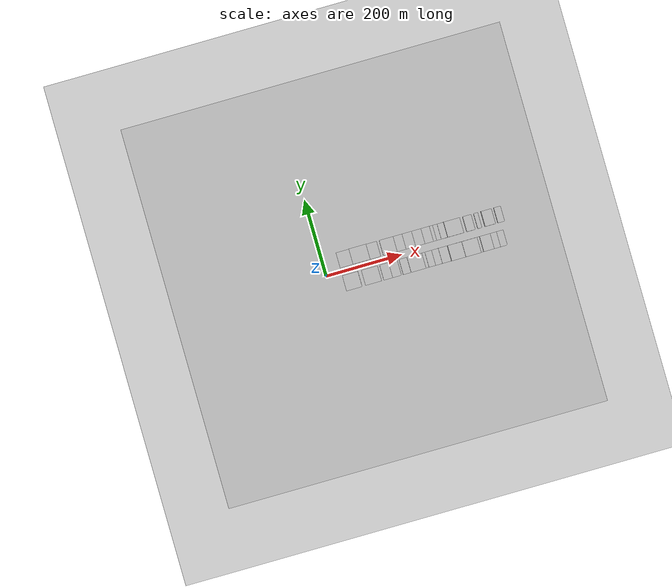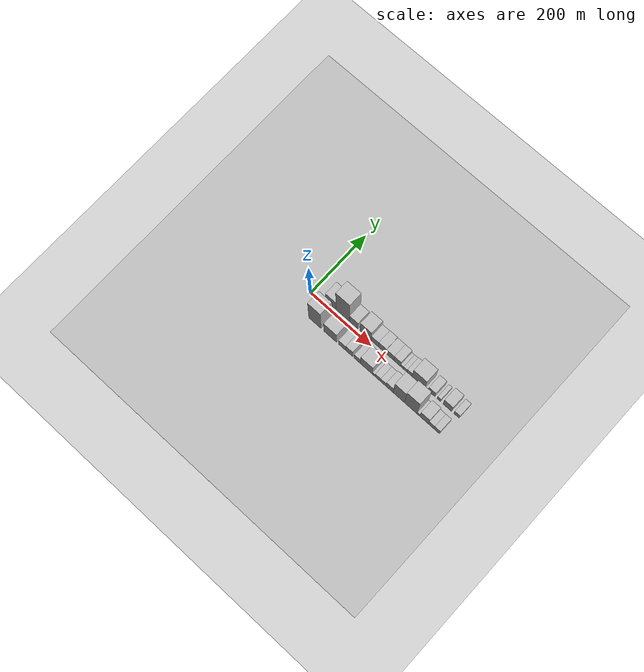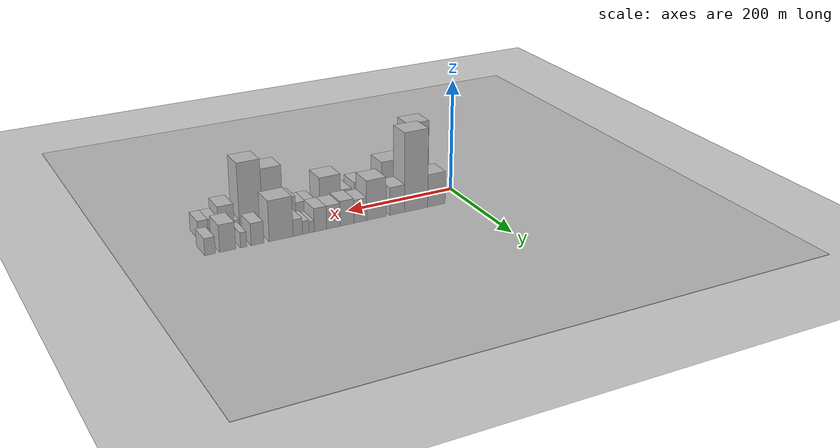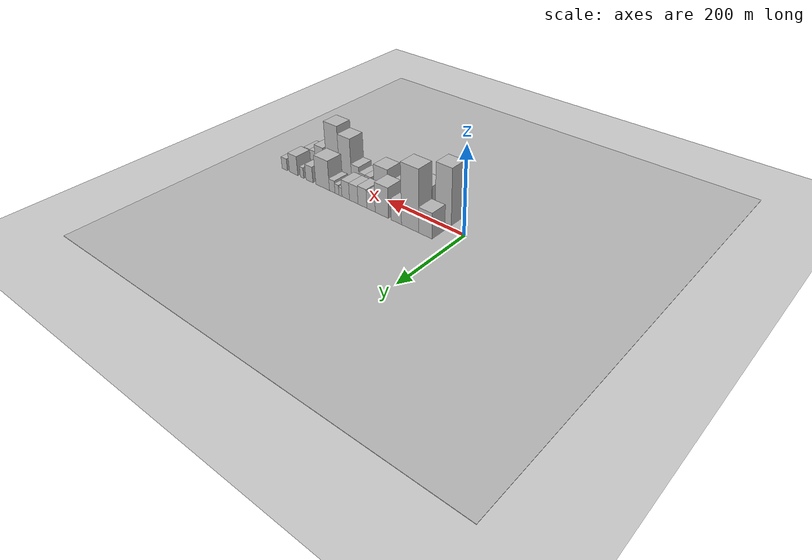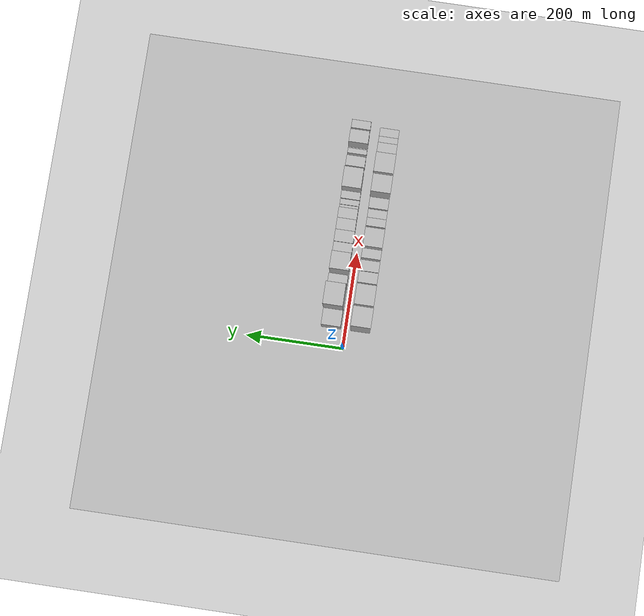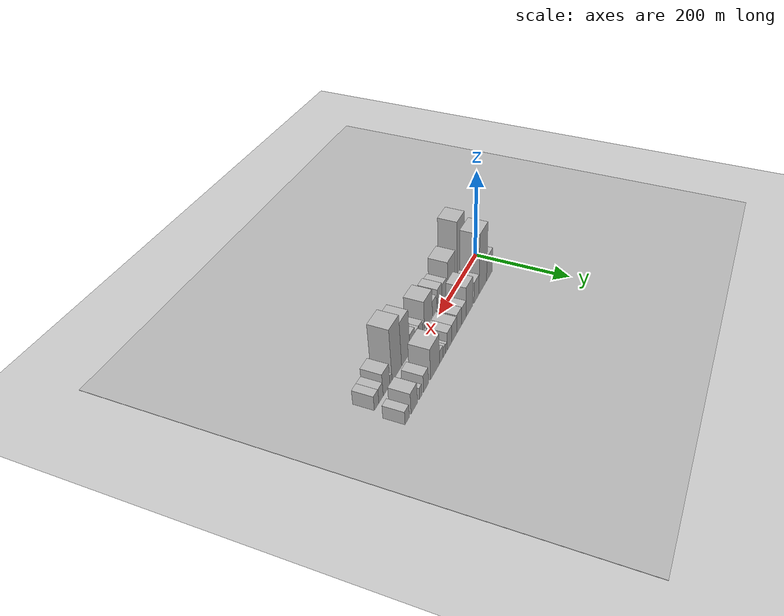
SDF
<?xml version="1.0" encoding="utf-8"?>

<sdf version="1.6">

   <world name="default">

      <gui fullscreen="0">

         <camera name="user_camera">

            <pose>-15 0 4.57585 0 0 0</pose>

            <view_controller>orbit</view_controller>

         </camera>

      </gui>

      <scene>

         <sky>

           <clouds>

             <speed>12</speed>

           </clouds>

         </sky>

         <ambient>0.4 0.4 0.4 1</ambient>

         <background>0.7 0.7 0.7 1</background>

         <shadows>1</shadows>

      </scene>

      <gravity>0 0 -9.8066</gravity>

      <magnetic_field>6e-06 2.3e-05 -4.2e-05</magnetic_field>

      <physics default="0" name="default_physics" type="ode">

         <ode>

            <solver>

               <type>quick</type>

               <iters>10</iters>

               <sor>1.0</sor>

               <use_dynamic_moi_rescaling>0</use_dynamic_moi_rescaling>

            </solver>

            <constraints>

               <cfm>0</cfm>

               <erp>0.2</erp>

               <contact_max_correcting_vel>100</contact_max_correcting_vel>

               <contact_surface_layer>0.001</contact_surface_layer>

            </constraints>

         </ode>

         <max_step_size>0.004</max_step_size>

         <real_time_factor>1</real_time_factor>

         <real_time_update_rate>250</real_time_update_rate>

      </physics>

      <light name="sun" type="directional">

         <cast_shadows>1</cast_shadows>

         <pose>0 0 10 0 0 0</pose>

         <diffuse>0.8 0.8 0.8 1</diffuse>

         <specular>0.2 0.2 0.2 1</specular>

         <attenuation>

            <range>1000</range>

            <constant>0.9</constant>

            <linear>0.01</linear>

            <quadratic>0.001</quadratic>

         </attenuation>

         <direction>-0.5 0.1 -0.9</direction>

      </light>

      <include>

         <name>ground_plane_1</name>

         <uri>model://HANNAS_ground_plane</uri>

         <pose>0 0 0  0 0 0</pose>

      </include>

      <include>

         <name>ground_plane_2</name>

         <uri>model://HANNAS_ground_plane</uri>

         <pose>100 0 0  0 0 0</pose>

      </include>

      <model name="building_1">

         <static>1</static>

         <pose frame="">56.9899 30.0000 0 0.000000 0.000000 1.570796</pose>

         <link name="link">

            <pose frame="">0 0 30.00 0 0 0</pose>

            <collision name="collision">

               <geometry>

                  <box>

                     <size>40.0000 33.9798 60.0000</size>

                  </box>

               </geometry>

               <max_contacts>10</max_contacts>

               <surface>

                  <contact>

                     <ode/>

                  </contact>

                  <bounce/>

                  <friction>

                     <torsional>

                        <ode/>

                     </torsional>

                     <ode/>

                  </friction>

               </surface>

            </collision>

            <visual name="visual">

               <cast_shadows>0</cast_shadows>

               <geometry>

                  <box>

                     <size>40.0000 33.9798 60.0000</size>

                  </box>

               </geometry>

               <material>

                  <script>

                     <uri>model://HANNAS_wall/materials/scripts</uri>

                     <uri>model://HANNAS_wall/materials/textures</uri>

                     <name>vrc/HANNAS_wall</name>

                  </script>

               </material>

            </visual>

            <self_collide>0</self_collide>

            <enable_wind>0</enable_wind>

            <kinematic>0</kinematic>

         </link>

      </model>

      <model name="building_2">

         <static>1</static>

         <pose frame="">96.3748 30.0000 0 0.000000 0.000000 1.570796</pose>

         <link name="link">

            <pose frame="">0 0 72.00 0 0 0</pose>

            <collision name="collision">

               <geometry>

                  <box>

                     <size>40.0000 44.7900 144.0000</size>

                  </box>

               </geometry>

               <max_contacts>10</max_contacts>

               <surface>

                  <contact>

                     <ode/>

                  </contact>

                  <bounce/>

                  <friction>

                     <torsional>

                        <ode/>

                     </torsional>

                     <ode/>

                  </friction>

               </surface>

            </collision>

            <visual name="visual">

               <cast_shadows>0</cast_shadows>

               <geometry>

                  <box>

                     <size>40.0000 44.7900 144.0000</size>

                  </box>

               </geometry>

               <material>

                  <script>

                     <uri>model://HANNAS_wall/materials/scripts</uri>

                     <uri>model://HANNAS_wall/materials/textures</uri>

                     <name>vrc/HANNAS_wall</name>

                  </script>

               </material>

            </visual>

            <self_collide>0</self_collide>

            <enable_wind>0</enable_wind>

            <kinematic>0</kinematic>

         </link>

      </model>

      <model name="building_3">

         <static>1</static>

         <pose frame="">132.7317 30.0000 0 0.000000 0.000000 1.570796</pose>

         <link name="link">

            <pose frame="">0 0 25.50 0 0 0</pose>

            <collision name="collision">

               <geometry>

                  <box>

                     <size>40.0000 27.9239 51.0000</size>

                  </box>

               </geometry>

               <max_contacts>10</max_contacts>

               <surface>

                  <contact>

                     <ode/>

                  </contact>

                  <bounce/>

                  <friction>

                     <torsional>

                        <ode/>

                     </torsional>

                     <ode/>

                  </friction>

               </surface>

            </collision>

            <visual name="visual">

               <cast_shadows>0</cast_shadows>

               <geometry>

                  <box>

                     <size>40.0000 27.9239 51.0000</size>

                  </box>

               </geometry>

               <material>

                  <script>

                     <uri>model://HANNAS_wall/materials/scripts</uri>

                     <uri>model://HANNAS_wall/materials/textures</uri>

                     <name>vrc/HANNAS_wall</name>

                  </script>

               </material>

            </visual>

            <self_collide>0</self_collide>

            <enable_wind>0</enable_wind>

            <kinematic>0</kinematic>

         </link>

      </model>

      <model name="building_4">

         <static>1</static>

         <pose frame="">171.7846 30.0000 0 0.000000 0.000000 1.570796</pose>

         <link name="link">

            <pose frame="">0 0 36.00 0 0 0</pose>

            <collision name="collision">

               <geometry>

                  <box>

                     <size>40.0000 36.1819 72.0000</size>

                  </box>

               </geometry>

               <max_contacts>10</max_contacts>

               <surface>

                  <contact>

                     <ode/>

                  </contact>

                  <bounce/>

                  <friction>

                     <torsional>

                        <ode/>

                     </torsional>

                     <ode/>

                  </friction>

               </surface>

            </collision>

            <visual name="visual">

               <cast_shadows>0</cast_shadows>

               <geometry>

                  <box>

                     <size>40.0000 36.1819 72.0000</size>

                  </box>

               </geometry>

               <material>

                  <script>

                     <uri>model://HANNAS_wall/materials/scripts</uri>

                     <uri>model://HANNAS_wall/materials/textures</uri>

                     <name>vrc/HANNAS_wall</name>

                  </script>

               </material>

            </visual>

            <self_collide>0</self_collide>

            <enable_wind>0</enable_wind>

            <kinematic>0</kinematic>

         </link>

      </model>

      <model name="building_5">

         <static>1</static>

         <pose frame="">201.5878 30.0000 0 0.000000 0.000000 1.570796</pose>

         <link name="link">

            <pose frame="">0 0 21.00 0 0 0</pose>

            <collision name="collision">

               <geometry>

                  <box>

                     <size>40.0000 23.4246 42.0000</size>

                  </box>

               </geometry>

               <max_contacts>10</max_contacts>

               <surface>

                  <contact>

                     <ode/>

                  </contact>

                  <bounce/>

                  <friction>

                     <torsional>

                        <ode/>

                     </torsional>

                     <ode/>

                  </friction>

               </surface>

            </collision>

            <visual name="visual">

               <cast_shadows>0</cast_shadows>

               <geometry>

                  <box>

                     <size>40.0000 23.4246 42.0000</size>

                  </box>

               </geometry>

               <material>

                  <script>

                     <uri>model://HANNAS_wall/materials/scripts</uri>

                     <uri>model://HANNAS_wall/materials/textures</uri>

                     <name>vrc/HANNAS_wall</name>

                  </script>

               </material>

            </visual>

            <self_collide>0</self_collide>

            <enable_wind>0</enable_wind>

            <kinematic>0</kinematic>

         </link>

      </model>

      <model name="building_6">

         <static>1</static>

         <pose frame="">225.8583 30.0000 0 0.000000 0.000000 1.570796</pose>

         <link name="link">

            <pose frame="">0 0 22.50 0 0 0</pose>

            <collision name="collision">

               <geometry>

                  <box>

                     <size>40.0000 25.1162 45.0000</size>

                  </box>

               </geometry>

               <max_contacts>10</max_contacts>

               <surface>

                  <contact>

                     <ode/>

                  </contact>

                  <bounce/>

                  <friction>

                     <torsional>

                        <ode/>

                     </torsional>

                     <ode/>

                  </friction>

               </surface>

            </collision>

            <visual name="visual">

               <cast_shadows>0</cast_shadows>

               <geometry>

                  <box>

                     <size>40.0000 25.1162 45.0000</size>

                  </box>

               </geometry>

               <material>

                  <script>

                     <uri>model://HANNAS_wall/materials/scripts</uri>

                     <uri>model://HANNAS_wall/materials/textures</uri>

                     <name>vrc/HANNAS_wall</name>

                  </script>

               </material>

            </visual>

            <self_collide>0</self_collide>

            <enable_wind>0</enable_wind>

            <kinematic>0</kinematic>

         </link>

      </model>

      <model name="building_7">

         <static>1</static>

         <pose frame="">250.7361 30.0000 0 0.000000 0.000000 1.570796</pose>

         <link name="link">

            <pose frame="">0 0 21.00 0 0 0</pose>

            <collision name="collision">

               <geometry>

                  <box>

                     <size>40.0000 24.6395 42.0000</size>

                  </box>

               </geometry>

               <max_contacts>10</max_contacts>

               <surface>

                  <contact>

                     <ode/>

                  </contact>

                  <bounce/>

                  <friction>

                     <torsional>

                        <ode/>

                     </torsional>

                     <ode/>

                  </friction>

               </surface>

            </collision>

            <visual name="visual">

               <cast_shadows>0</cast_shadows>

               <geometry>

                  <box>

                     <size>40.0000 24.6395 42.0000</size>

                  </box>

               </geometry>

               <material>

                  <script>

                     <uri>model://HANNAS_wall/materials/scripts</uri>

                     <uri>model://HANNAS_wall/materials/textures</uri>

                     <name>vrc/HANNAS_wall</name>

                  </script>

               </material>

            </visual>

            <self_collide>0</self_collide>

            <enable_wind>0</enable_wind>

            <kinematic>0</kinematic>

         </link>

      </model>

      <model name="building_8">

         <static>1</static>

         <pose frame="">274.1324 30.0000 0 0.000000 0.000000 1.570796</pose>

         <link name="link">

            <pose frame="">0 0 21.00 0 0 0</pose>

            <collision name="collision">

               <geometry>

                  <box>

                     <size>40.0000 22.1531 42.0000</size>

                  </box>

               </geometry>

               <max_contacts>10</max_contacts>

               <surface>

                  <contact>

                     <ode/>

                  </contact>

                  <bounce/>

                  <friction>

                     <torsional>

                        <ode/>

                     </torsional>

                     <ode/>

                  </friction>

               </surface>

            </collision>

            <visual name="visual">

               <cast_shadows>0</cast_shadows>

               <geometry>

                  <box>

                     <size>40.0000 22.1531 42.0000</size>

                  </box>

               </geometry>

               <material>

                  <script>

                     <uri>model://HANNAS_wall/materials/scripts</uri>

                     <uri>model://HANNAS_wall/materials/textures</uri>

                     <name>vrc/HANNAS_wall</name>

                  </script>

               </material>

            </visual>

            <self_collide>0</self_collide>

            <enable_wind>0</enable_wind>

            <kinematic>0</kinematic>

         </link>

      </model>

      <model name="building_9">

         <static>1</static>

         <pose frame="">289.7106 30.0000 0 0.000000 0.000000 1.570796</pose>

         <link name="link">

            <pose frame="">0 0 10.50 0 0 0</pose>

            <collision name="collision">

               <geometry>

                  <box>

                     <size>40.0000 9.0032 21.0000</size>

                  </box>

               </geometry>

               <max_contacts>10</max_contacts>

               <surface>

                  <contact>

                     <ode/>

                  </contact>

                  <bounce/>

                  <friction>

                     <torsional>

                        <ode/>

                     </torsional>

                     <ode/>

                  </friction>

               </surface>

            </collision>

            <visual name="visual">

               <cast_shadows>0</cast_shadows>

               <geometry>

                  <box>

                     <size>40.0000 9.0032 21.0000</size>

                  </box>

               </geometry>

               <material>

                  <script>

                     <uri>model://HANNAS_wall/materials/scripts</uri>

                     <uri>model://HANNAS_wall/materials/textures</uri>

                     <name>vrc/HANNAS_wall</name>

                  </script>

               </material>

            </visual>

            <self_collide>0</self_collide>

            <enable_wind>0</enable_wind>

            <kinematic>0</kinematic>

         </link>

      </model>

      <model name="building_10">

         <static>1</static>

         <pose frame="">300.1160 30.0000 0 0.000000 0.000000 1.570796</pose>

         <link name="link">

            <pose frame="">0 0 12.00 0 0 0</pose>

            <collision name="collision">

               <geometry>

                  <box>

                     <size>40.0000 11.8075 24.0000</size>

                  </box>

               </geometry>

               <max_contacts>10</max_contacts>

               <surface>

                  <contact>

                     <ode/>

                  </contact>

                  <bounce/>

                  <friction>

                     <torsional>

                        <ode/>

                     </torsional>

                     <ode/>

                  </friction>

               </surface>

            </collision>

            <visual name="visual">

               <cast_shadows>0</cast_shadows>

               <geometry>

                  <box>

                     <size>40.0000 11.8075 24.0000</size>

                  </box>

               </geometry>

               <material>

                  <script>

                     <uri>model://HANNAS_wall/materials/scripts</uri>

                     <uri>model://HANNAS_wall/materials/textures</uri>

                     <name>vrc/HANNAS_wall</name>

                  </script>

               </material>

            </visual>

            <self_collide>0</self_collide>

            <enable_wind>0</enable_wind>

            <kinematic>0</kinematic>

         </link>

      </model>

      <model name="building_11">

         <static>1</static>

         <pose frame="">314.2393 30.0000 0 0.000000 0.000000 1.570796</pose>

         <link name="link">

            <pose frame="">0 0 15.00 0 0 0</pose>

            <collision name="collision">

               <geometry>

                  <box>

                     <size>40.0000 16.4392 30.0000</size>

                  </box>

               </geometry>

               <max_contacts>10</max_contacts>

               <surface>

                  <contact>

                     <ode/>

                  </contact>

                  <bounce/>

                  <friction>

                     <torsional>

                        <ode/>

                     </torsional>

                     <ode/>

                  </friction>

               </surface>

            </collision>

            <visual name="visual">

               <cast_shadows>0</cast_shadows>

               <geometry>

                  <box>

                     <size>40.0000 16.4392 30.0000</size>

                  </box>

               </geometry>

               <material>

                  <script>

                     <uri>model://HANNAS_wall/materials/scripts</uri>

                     <uri>model://HANNAS_wall/materials/textures</uri>

                     <name>vrc/HANNAS_wall</name>

                  </script>

               </material>

            </visual>

            <self_collide>0</self_collide>

            <enable_wind>0</enable_wind>

            <kinematic>0</kinematic>

         </link>

      </model>

      <model name="building_12">

         <static>1</static>

         <pose frame="">343.3888 30.0000 0 0.000000 0.000000 1.570796</pose>

         <link name="link">

            <pose frame="">0 0 36.00 0 0 0</pose>

            <collision name="collision">

               <geometry>

                  <box>

                     <size>40.0000 41.8596 72.0000</size>

                  </box>

               </geometry>

               <max_contacts>10</max_contacts>

               <surface>

                  <contact>

                     <ode/>

                  </contact>

                  <bounce/>

                  <friction>

                     <torsional>

                        <ode/>

                     </torsional>

                     <ode/>

                  </friction>

               </surface>

            </collision>

            <visual name="visual">

               <cast_shadows>0</cast_shadows>

               <geometry>

                  <box>

                     <size>40.0000 41.8596 72.0000</size>

                  </box>

               </geometry>

               <material>

                  <script>

                     <uri>model://HANNAS_wall/materials/scripts</uri>

                     <uri>model://HANNAS_wall/materials/textures</uri>

                     <name>vrc/HANNAS_wall</name>

                  </script>

               </material>

            </visual>

            <self_collide>0</self_collide>

            <enable_wind>0</enable_wind>

            <kinematic>0</kinematic>

         </link>

      </model>

      <model name="building_13">

         <static>1</static>

         <pose frame="">384.3502 30.0000 0 0.000000 0.000000 1.570796</pose>

         <link name="link">

            <pose frame="">0 0 19.50 0 0 0</pose>

            <collision name="collision">

               <geometry>

                  <box>

                     <size>40.0000 22.0633 39.0000</size>

                  </box>

               </geometry>

               <max_contacts>10</max_contacts>

               <surface>

                  <contact>

                     <ode/>

                  </contact>

                  <bounce/>

                  <friction>

                     <torsional>

                        <ode/>

                     </torsional>

                     <ode/>

                  </friction>

               </surface>

            </collision>

            <visual name="visual">

               <cast_shadows>0</cast_shadows>

               <geometry>

                  <box>

                     <size>40.0000 22.0633 39.0000</size>

                  </box>

               </geometry>

               <material>

                  <script>

                     <uri>model://HANNAS_wall/materials/scripts</uri>

                     <uri>model://HANNAS_wall/materials/textures</uri>

                     <name>vrc/HANNAS_wall</name>

                  </script>

               </material>

            </visual>

            <self_collide>0</self_collide>

            <enable_wind>0</enable_wind>

            <kinematic>0</kinematic>

         </link>

      </model>

      <model name="building_14">

         <static>1</static>

         <pose frame="">407.8073 30.0000 0 0.000000 0.000000 1.570796</pose>

         <link name="link">

            <pose frame="">0 0 13.50 0 0 0</pose>

            <collision name="collision">

               <geometry>

                  <box>

                     <size>40.0000 10.8509 27.0000</size>

                  </box>

               </geometry>

               <max_contacts>10</max_contacts>

               <surface>

                  <contact>

                     <ode/>

                  </contact>

                  <bounce/>

                  <friction>

                     <torsional>

                        <ode/>

                     </torsional>

                     <ode/>

                  </friction>

               </surface>

            </collision>

            <visual name="visual">

               <cast_shadows>0</cast_shadows>

               <geometry>

                  <box>

                     <size>40.0000 10.8509 27.0000</size>

                  </box>

               </geometry>

               <material>

                  <script>

                     <uri>model://HANNAS_wall/materials/scripts</uri>

                     <uri>model://HANNAS_wall/materials/textures</uri>

                     <name>vrc/HANNAS_wall</name>

                  </script>

               </material>

            </visual>

            <self_collide>0</self_collide>

            <enable_wind>0</enable_wind>

            <kinematic>0</kinematic>

         </link>

      </model>

      <model name="building_15">

         <static>1</static>

         <pose frame="">434.7490 30.0000 0 0.000000 0.000000 1.570796</pose>

         <link name="link">

            <pose frame="">0 0 24.00 0 0 0</pose>

            <collision name="collision">

               <geometry>

                  <box>

                     <size>40.0000 27.0325 48.0000</size>

                  </box>

               </geometry>

               <max_contacts>10</max_contacts>

               <surface>

                  <contact>

                     <ode/>

                  </contact>

                  <bounce/>

                  <friction>

                     <torsional>

                        <ode/>

                     </torsional>

                     <ode/>

                  </friction>

               </surface>

            </collision>

            <visual name="visual">

               <cast_shadows>0</cast_shadows>

               <geometry>

                  <box>

                     <size>40.0000 27.0325 48.0000</size>

                  </box>

               </geometry>

               <material>

                  <script>

                     <uri>model://HANNAS_wall/materials/scripts</uri>

                     <uri>model://HANNAS_wall/materials/textures</uri>

                     <name>vrc/HANNAS_wall</name>

                  </script>

               </material>

            </visual>

            <self_collide>0</self_collide>

            <enable_wind>0</enable_wind>

            <kinematic>0</kinematic>

         </link>

      </model>

      <model name="building_16">

         <static>1</static>

         <pose frame="">464.0350 30.0000 0 0.000000 0.000000 1.570796</pose>

         <link name="link">

            <pose frame="">0 0 15.00 0 0 0</pose>

            <collision name="collision">

               <geometry>

                  <box>

                     <size>40.0000 17.5395 30.0000</size>

                  </box>

               </geometry>

               <max_contacts>10</max_contacts>

               <surface>

                  <contact>

                     <ode/>

                  </contact>

                  <bounce/>

                  <friction>

                     <torsional>

                        <ode/>

                     </torsional>

                     <ode/>

                  </friction>

               </surface>

            </collision>

            <visual name="visual">

               <cast_shadows>0</cast_shadows>

               <geometry>

                  <box>

                     <size>40.0000 17.5395 30.0000</size>

                  </box>

               </geometry>

               <material>

                  <script>

                     <uri>model://HANNAS_wall/materials/scripts</uri>

                     <uri>model://HANNAS_wall/materials/textures</uri>

                     <name>vrc/HANNAS_wall</name>

                  </script>

               </material>

            </visual>

            <self_collide>0</self_collide>

            <enable_wind>0</enable_wind>

            <kinematic>0</kinematic>

         </link>

      </model>

      <model name="building_17">

         <static>1</static>

         <pose frame="">60.2408 -30.0000 0 0.000000 0.000000 1.570796</pose>

         <link name="link">

            <pose frame="">0 0 66.00 0 0 0</pose>

            <collision name="collision">

               <geometry>

                  <box>

                     <size>40.0000 40.4815 132.0000</size>

                  </box>

               </geometry>

               <max_contacts>10</max_contacts>

               <surface>

                  <contact>

                     <ode/>

                  </contact>

                  <bounce/>

                  <friction>

                     <torsional>

                        <ode/>

                     </torsional>

                     <ode/>

                  </friction>

               </surface>

            </collision>

            <visual name="visual">

               <cast_shadows>0</cast_shadows>

               <geometry>

                  <box>

                     <size>40.0000 40.4815 132.0000</size>

                  </box>

               </geometry>

               <material>

                  <script>

                     <uri>model://HANNAS_wall/materials/scripts</uri>

                     <uri>model://HANNAS_wall/materials/textures</uri>

                     <name>vrc/HANNAS_wall</name>

                  </script>

               </material>

            </visual>

            <self_collide>0</self_collide>

            <enable_wind>0</enable_wind>

            <kinematic>0</kinematic>

         </link>

      </model>

      <model name="building_18">

         <static>1</static>

         <pose frame="">110.5925 -30.0000 0 0.000000 0.000000 1.570796</pose>

         <link name="link">

            <pose frame="">0 0 36.00 0 0 0</pose>

            <collision name="collision">

               <geometry>

                  <box>

                     <size>40.0000 42.2219 72.0000</size>

                  </box>

               </geometry>

               <max_contacts>10</max_contacts>

               <surface>

                  <contact>

                     <ode/>

                  </contact>

                  <bounce/>

                  <friction>

                     <torsional>

                        <ode/>

                     </torsional>

                     <ode/>

                  </friction>

               </surface>

            </collision>

            <visual name="visual">

               <cast_shadows>0</cast_shadows>

               <geometry>

                  <box>

                     <size>40.0000 42.2219 72.0000</size>

                  </box>

               </geometry>

               <material>

                  <script>

                     <uri>model://HANNAS_wall/materials/scripts</uri>

                     <uri>model://HANNAS_wall/materials/textures</uri>

                     <name>vrc/HANNAS_wall</name>

                  </script>

               </material>

            </visual>

            <self_collide>0</self_collide>

            <enable_wind>0</enable_wind>

            <kinematic>0</kinematic>

         </link>

      </model>

      <model name="building_19">

         <static>1</static>

         <pose frame="">149.3509 -30.0000 0 0.000000 0.000000 1.570796</pose>

         <link name="link">

            <pose frame="">0 0 19.50 0 0 0</pose>

            <collision name="collision">

               <geometry>

                  <box>

                     <size>40.0000 23.2949 39.0000</size>

                  </box>

               </geometry>

               <max_contacts>10</max_contacts>

               <surface>

                  <contact>

                     <ode/>

                  </contact>

                  <bounce/>

                  <friction>

                     <torsional>

                        <ode/>

                     </torsional>

                     <ode/>

                  </friction>

               </surface>

            </collision>

            <visual name="visual">

               <cast_shadows>0</cast_shadows>

               <geometry>

                  <box>

                     <size>40.0000 23.2949 39.0000</size>

                  </box>

               </geometry>

               <material>

                  <script>

                     <uri>model://HANNAS_wall/materials/scripts</uri>

                     <uri>model://HANNAS_wall/materials/textures</uri>

                     <name>vrc/HANNAS_wall</name>

                  </script>

               </material>

            </visual>

            <self_collide>0</self_collide>

            <enable_wind>0</enable_wind>

            <kinematic>0</kinematic>

         </link>

      </model>

      <model name="building_20">

         <static>1</static>

         <pose frame="">172.4431 -30.0000 0 0.000000 0.000000 1.570796</pose>

         <link name="link">

            <pose frame="">0 0 22.50 0 0 0</pose>

            <collision name="collision">

               <geometry>

                  <box>

                     <size>40.0000 22.8895 45.0000</size>

                  </box>

               </geometry>

               <max_contacts>10</max_contacts>

               <surface>

                  <contact>

                     <ode/>

                  </contact>

                  <bounce/>

                  <friction>

                     <torsional>

                        <ode/>

                     </torsional>

                     <ode/>

                  </friction>

               </surface>

            </collision>

            <visual name="visual">

               <cast_shadows>0</cast_shadows>

               <geometry>

                  <box>

                     <size>40.0000 22.8895 45.0000</size>

                  </box>

               </geometry>

               <material>

                  <script>

                     <uri>model://HANNAS_wall/materials/scripts</uri>

                     <uri>model://HANNAS_wall/materials/textures</uri>

                     <name>vrc/HANNAS_wall</name>

                  </script>

               </material>

            </visual>

            <self_collide>0</self_collide>

            <enable_wind>0</enable_wind>

            <kinematic>0</kinematic>

         </link>

      </model>

      <model name="building_21">

         <static>1</static>

         <pose frame="">199.0537 -30.0000 0 0.000000 0.000000 1.570796</pose>

         <link name="link">

            <pose frame="">0 0 18.00 0 0 0</pose>

            <collision name="collision">

               <geometry>

                  <box>

                     <size>40.0000 20.3315 36.0000</size>

                  </box>

               </geometry>

               <max_contacts>10</max_contacts>

               <surface>

                  <contact>

                     <ode/>

                  </contact>

                  <bounce/>

                  <friction>

                     <torsional>

                        <ode/>

                     </torsional>

                     <ode/>

                  </friction>

               </surface>

            </collision>

            <visual name="visual">

               <cast_shadows>0</cast_shadows>

               <geometry>

                  <box>

                     <size>40.0000 20.3315 36.0000</size>

                  </box>

               </geometry>

               <material>

                  <script>

                     <uri>model://HANNAS_wall/materials/scripts</uri>

                     <uri>model://HANNAS_wall/materials/textures</uri>

                     <name>vrc/HANNAS_wall</name>

                  </script>

               </material>

            </visual>

            <self_collide>0</self_collide>

            <enable_wind>0</enable_wind>

            <kinematic>0</kinematic>

         </link>

      </model>

      <model name="building_22">

         <static>1</static>

         <pose frame="">228.6723 -30.0000 0 0.000000 0.000000 1.570796</pose>

         <link name="link">

            <pose frame="">0 0 33.00 0 0 0</pose>

            <collision name="collision">

               <geometry>

                  <box>

                     <size>40.0000 38.9058 66.0000</size>

                  </box>

               </geometry>

               <max_contacts>10</max_contacts>

               <surface>

                  <contact>

                     <ode/>

                  </contact>

                  <bounce/>

                  <friction>

                     <torsional>

                        <ode/>

                     </torsional>

                     <ode/>

                  </friction>

               </surface>

            </collision>

            <visual name="visual">

               <cast_shadows>0</cast_shadows>

               <geometry>

                  <box>

                     <size>40.0000 38.9058 66.0000</size>

                  </box>

               </geometry>

               <material>

                  <script>

                     <uri>model://HANNAS_wall/materials/scripts</uri>

                     <uri>model://HANNAS_wall/materials/textures</uri>

                     <name>vrc/HANNAS_wall</name>

                  </script>

               </material>

            </visual>

            <self_collide>0</self_collide>

            <enable_wind>0</enable_wind>

            <kinematic>0</kinematic>

         </link>

      </model>

      <model name="building_23">

         <static>1</static>

         <pose frame="">252.4351 -30.0000 0 0.000000 0.000000 1.570796</pose>

         <link name="link">

            <pose frame="">0 0 10.50 0 0 0</pose>

            <collision name="collision">

               <geometry>

                  <box>

                     <size>40.0000 8.6197 21.0000</size>

                  </box>

               </geometry>

               <max_contacts>10</max_contacts>

               <surface>

                  <contact>

                     <ode/>

                  </contact>

                  <bounce/>

                  <friction>

                     <torsional>

                        <ode/>

                     </torsional>

                     <ode/>

                  </friction>

               </surface>

            </collision>

            <visual name="visual">

               <cast_shadows>0</cast_shadows>

               <geometry>

                  <box>

                     <size>40.0000 8.6197 21.0000</size>

                  </box>

               </geometry>

               <material>

                  <script>

                     <uri>model://HANNAS_wall/materials/scripts</uri>

                     <uri>model://HANNAS_wall/materials/textures</uri>

                     <name>vrc/HANNAS_wall</name>

                  </script>

               </material>

            </visual>

            <self_collide>0</self_collide>

            <enable_wind>0</enable_wind>

            <kinematic>0</kinematic>

         </link>

      </model>

      <model name="building_24">

         <static>1</static>

         <pose frame="">265.4356 -30.0000 0 0.000000 0.000000 1.570796</pose>

         <link name="link">

            <pose frame="">0 0 15.00 0 0 0</pose>

            <collision name="collision">

               <geometry>

                  <box>

                     <size>40.0000 17.3813 30.0000</size>

                  </box>

               </geometry>

               <max_contacts>10</max_contacts>

               <surface>

                  <contact>

                     <ode/>

                  </contact>

                  <bounce/>

                  <friction>

                     <torsional>

                        <ode/>

                     </torsional>

                     <ode/>

                  </friction>

               </surface>

            </collision>

            <visual name="visual">

               <cast_shadows>0</cast_shadows>

               <geometry>

                  <box>

                     <size>40.0000 17.3813 30.0000</size>

                  </box>

               </geometry>

               <material>

                  <script>

                     <uri>model://HANNAS_wall/materials/scripts</uri>

                     <uri>model://HANNAS_wall/materials/textures</uri>

                     <name>vrc/HANNAS_wall</name>

                  </script>

               </material>

            </visual>

            <self_collide>0</self_collide>

            <enable_wind>0</enable_wind>

            <kinematic>0</kinematic>

         </link>

      </model>

      <model name="building_25">

         <static>1</static>

         <pose frame="">283.0175 -30.0000 0 0.000000 0.000000 1.570796</pose>

         <link name="link">

            <pose frame="">0 0 15.00 0 0 0</pose>

            <collision name="collision">

               <geometry>

                  <box>

                     <size>40.0000 17.7824 30.0000</size>

                  </box>

               </geometry>

               <max_contacts>10</max_contacts>

               <surface>

                  <contact>

                     <ode/>

                  </contact>

                  <bounce/>

                  <friction>

                     <torsional>

                        <ode/>

                     </torsional>

                     <ode/>

                  </friction>

               </surface>

            </collision>

            <visual name="visual">

               <cast_shadows>0</cast_shadows>

               <geometry>

                  <box>

                     <size>40.0000 17.7824 30.0000</size>

                  </box>

               </geometry>

               <material>

                  <script>

                     <uri>model://HANNAS_wall/materials/scripts</uri>

                     <uri>model://HANNAS_wall/materials/textures</uri>

                     <name>vrc/HANNAS_wall</name>

                  </script>

               </material>

            </visual>

            <self_collide>0</self_collide>

            <enable_wind>0</enable_wind>

            <kinematic>0</kinematic>

         </link>

      </model>

      <model name="building_26">

         <static>1</static>

         <pose frame="">303.5092 -30.0000 0 0.000000 0.000000 1.570796</pose>

         <link name="link">

            <pose frame="">0 0 21.00 0 0 0</pose>

            <collision name="collision">

               <geometry>

                  <box>

                     <size>40.0000 23.2012 42.0000</size>

                  </box>

               </geometry>

               <max_contacts>10</max_contacts>

               <surface>

                  <contact>

                     <ode/>

                  </contact>

                  <bounce/>

                  <friction>

                     <torsional>

                        <ode/>

                     </torsional>

                     <ode/>

                  </friction>

               </surface>

            </collision>

            <visual name="visual">

               <cast_shadows>0</cast_shadows>

               <geometry>

                  <box>

                     <size>40.0000 23.2012 42.0000</size>

                  </box>

               </geometry>

               <material>

                  <script>

                     <uri>model://HANNAS_wall/materials/scripts</uri>

                     <uri>model://HANNAS_wall/materials/textures</uri>

                     <name>vrc/HANNAS_wall</name>

                  </script>

               </material>

            </visual>

            <self_collide>0</self_collide>

            <enable_wind>0</enable_wind>

            <kinematic>0</kinematic>

         </link>

      </model>

      <model name="building_27">

         <static>1</static>

         <pose frame="">333.3617 -30.0000 0 0.000000 0.000000 1.570796</pose>

         <link name="link">

            <pose frame="">0 0 51.00 0 0 0</pose>

            <collision name="collision">

               <geometry>

                  <box>

                     <size>40.0000 36.5038 102.0000</size>

                  </box>

               </geometry>

               <max_contacts>10</max_contacts>

               <surface>

                  <contact>

                     <ode/>

                  </contact>

                  <bounce/>

                  <friction>

                     <torsional>

                        <ode/>

                     </torsional>

                     <ode/>

                  </friction>

               </surface>

            </collision>

            <visual name="visual">

               <cast_shadows>0</cast_shadows>

               <geometry>

                  <box>

                     <size>40.0000 36.5038 102.0000</size>

                  </box>

               </geometry>

               <material>

                  <script>

                     <uri>model://HANNAS_wall/materials/scripts</uri>

                     <uri>model://HANNAS_wall/materials/textures</uri>

                     <name>vrc/HANNAS_wall</name>

                  </script>

               </material>

            </visual>

            <self_collide>0</self_collide>

            <enable_wind>0</enable_wind>

            <kinematic>0</kinematic>

         </link>

      </model>

      <model name="building_28">

         <static>1</static>

         <pose frame="">371.5924 -30.0000 0 0.000000 0.000000 1.570796</pose>

         <link name="link">

            <pose frame="">0 0 60.00 0 0 0</pose>

            <collision name="collision">

               <geometry>

                  <box>

                     <size>40.0000 39.9575 120.0000</size>

                  </box>

               </geometry>

               <max_contacts>10</max_contacts>

               <surface>

                  <contact>

                     <ode/>

                  </contact>

                  <bounce/>

                  <friction>

                     <torsional>

                        <ode/>

                     </torsional>

                     <ode/>

                  </friction>

               </surface>

            </collision>

            <visual name="visual">

               <cast_shadows>0</cast_shadows>

               <geometry>

                  <box>

                     <size>40.0000 39.9575 120.0000</size>

                  </box>

               </geometry>

               <material>

                  <script>

                     <uri>model://HANNAS_wall/materials/scripts</uri>

                     <uri>model://HANNAS_wall/materials/textures</uri>

                     <name>vrc/HANNAS_wall</name>

                  </script>

               </material>

            </visual>

            <self_collide>0</self_collide>

            <enable_wind>0</enable_wind>

            <kinematic>0</kinematic>

         </link>

      </model>

      <model name="building_29">

         <static>1</static>

         <pose frame="">395.9898 -30.0000 0 0.000000 0.000000 1.570796</pose>

         <link name="link">

            <pose frame="">0 0 10.50 0 0 0</pose>

            <collision name="collision">

               <geometry>

                  <box>

                     <size>40.0000 8.8374 21.0000</size>

                  </box>

               </geometry>

               <max_contacts>10</max_contacts>

               <surface>

                  <contact>

                     <ode/>

                  </contact>

                  <bounce/>

                  <friction>

                     <torsional>

                        <ode/>

                     </torsional>

                     <ode/>

                  </friction>

               </surface>

            </collision>

            <visual name="visual">

               <cast_shadows>0</cast_shadows>

               <geometry>

                  <box>

                     <size>40.0000 8.8374 21.0000</size>

                  </box>

               </geometry>

               <material>

                  <script>

                     <uri>model://HANNAS_wall/materials/scripts</uri>

                     <uri>model://HANNAS_wall/materials/textures</uri>

                     <name>vrc/HANNAS_wall</name>

                  </script>

               </material>

            </visual>

            <self_collide>0</self_collide>

            <enable_wind>0</enable_wind>

            <kinematic>0</kinematic>

         </link>

      </model>

      <model name="building_30">

         <static>1</static>

         <pose frame="">414.1395 -30.0000 0 0.000000 0.000000 1.570796</pose>

         <link name="link">

            <pose frame="">0 0 25.50 0 0 0</pose>

            <collision name="collision">

               <geometry>

                  <box>

                     <size>40.0000 27.4620 51.0000</size>

                  </box>

               </geometry>

               <max_contacts>10</max_contacts>

               <surface>

                  <contact>

                     <ode/>

                  </contact>

                  <bounce/>

                  <friction>

                     <torsional>

                        <ode/>

                     </torsional>

                     <ode/>

                  </friction>

               </surface>

            </collision>

            <visual name="visual">

               <cast_shadows>0</cast_shadows>

               <geometry>

                  <box>

                     <size>40.0000 27.4620 51.0000</size>

                  </box>

               </geometry>

               <material>

                  <script>

                     <uri>model://HANNAS_wall/materials/scripts</uri>

                     <uri>model://HANNAS_wall/materials/textures</uri>

                     <name>vrc/HANNAS_wall</name>

                  </script>

               </material>

            </visual>

            <self_collide>0</self_collide>

            <enable_wind>0</enable_wind>

            <kinematic>0</kinematic>

         </link>

      </model>

      <model name="building_31">

         <static>1</static>

         <pose frame="">436.4827 -30.0000 0 0.000000 0.000000 1.570796</pose>

         <link name="link">

            <pose frame="">0 0 16.50 0 0 0</pose>

            <collision name="collision">

               <geometry>

                  <box>

                     <size>40.0000 17.2243 33.0000</size>

                  </box>

               </geometry>

               <max_contacts>10</max_contacts>

               <surface>

                  <contact>

                     <ode/>

                  </contact>

                  <bounce/>

                  <friction>

                     <torsional>

                        <ode/>

                     </torsional>

                     <ode/>

                  </friction>

               </surface>

            </collision>

            <visual name="visual">

               <cast_shadows>0</cast_shadows>

               <geometry>

                  <box>

                     <size>40.0000 17.2243 33.0000</size>

                  </box>

               </geometry>

               <material>

                  <script>

                     <uri>model://HANNAS_wall/materials/scripts</uri>

                     <uri>model://HANNAS_wall/materials/textures</uri>

                     <name>vrc/HANNAS_wall</name>

                  </script>

               </material>

            </visual>

            <self_collide>0</self_collide>

            <enable_wind>0</enable_wind>

            <kinematic>0</kinematic>

         </link>

      </model>

      <model name="building_32">

         <static>1</static>

         <pose frame="">453.9302 -30.0000 0 0.000000 0.000000 1.570796</pose>

         <link name="link">

            <pose frame="">0 0 16.50 0 0 0</pose>

            <collision name="collision">

               <geometry>

                  <box>

                     <size>40.0000 17.6707 33.0000</size>

                  </box>

               </geometry>

               <max_contacts>10</max_contacts>

               <surface>

                  <contact>

                     <ode/>

                  </contact>

                  <bounce/>

                  <friction>

                     <torsional>

                        <ode/>

                     </torsional>

                     <ode/>

                  </friction>

               </surface>

            </collision>

            <visual name="visual">

               <cast_shadows>0</cast_shadows>

               <geometry>

                  <box>

                     <size>40.0000 17.6707 33.0000</size>

                  </box>

               </geometry>

               <material>

                  <script>

                     <uri>model://HANNAS_wall/materials/scripts</uri>

                     <uri>model://HANNAS_wall/materials/textures</uri>

                     <name>vrc/HANNAS_wall</name>

                  </script>

               </material>

            </visual>

            <self_collide>0</self_collide>

            <enable_wind>0</enable_wind>

            <kinematic>0</kinematic>

         </link>

      </model>

   </world>

</sdf>

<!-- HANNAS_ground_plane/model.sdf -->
<sdf version="1.4">
<model name="HANNAS_ground_plane">
  <static>true</static>
    <link name="link">
      <collision name="collision">
        <geometry>
          <plane>
            <normal>0 0 1</normal>
            <size>1000 1000</size>
          </plane>
        </geometry>
        <surface>
          <friction>
            <ode>
              <mu>100</mu>
              <mu2>50</mu2>
            </ode>
          </friction>
        </surface>
      </collision>
      <visual name="visual">
        <cast_shadows>false</cast_shadows>
        <geometry>
          <plane>
            <normal>0 0 1</normal>
            <size>1000 1000</size>
          </plane>
        </geometry>
        <material>
          <script>
            <uri>model://HANNAS_ground_plane/materials/scripts/HANNAS_ground_plane.material</uri>
	    <uri>model://HANNAS_ground_plane/materials/textures</uri>
            <name>HANNASGroundPlane/Image</name>
          </script>
        </material>
      </visual>
    </link>
  </model>
</sdf>
